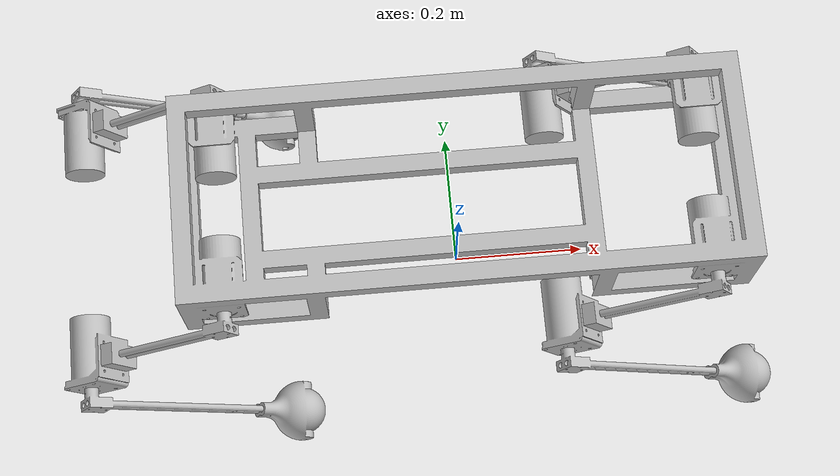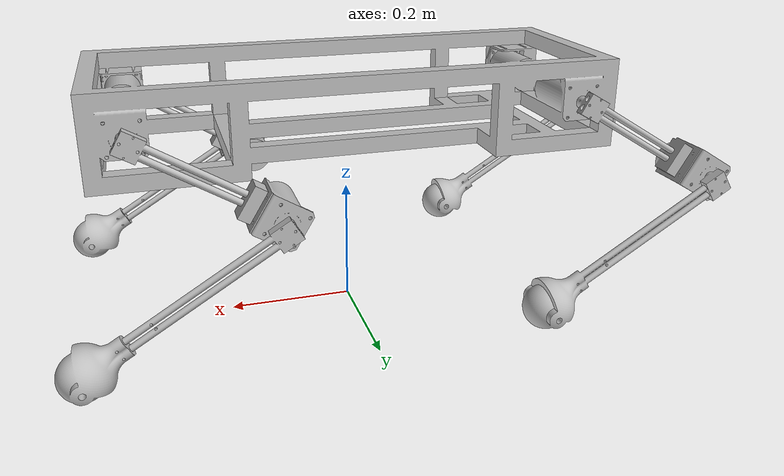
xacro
<?xml version="1.0"?>
<robot xmlns:xacro="http://www.ros.org/wiki/xacro" name="quadruped">
    <xacro:property name="PI" value="3.14159"/>
    <xacro:include filename="$(find rm_quadruped)/urdf/macros.xacro"/>
    <link name="base_footprint">
        <visual>
            <origin xyz="0.0 0.0 0.0" rpy="0.0 0.0 0.0"/>
            <geometry>
                <box size="0.001 0.001 0.001"/>
            </geometry>
            <material name="silver">
                <color rgba="${192/255} ${192/255} ${192/255} 1.0"/>
            </material>
        </visual>
    </link>
    <joint name="base_joint" type="fixed">
        <origin xyz="0.0 0.0 0.420" rpy="0.0 0.0 0.0"/>
        <parent link="base_footprint"/>
        <child link="base_link"/>
    </joint>
    <xacro:LINK
        linkname="base_link"
        x="0.0"
        y="0.0"
        z="0.0"
        roll="0"
        pitch="0"
        yaw="0"
        meshfile="package://rm_quadruped/meshes/frame.dae"
        mass="1.0"
        ixx="0.0"
        ixy="0.0"
        ixz="0.0"
        iyy="0.0"
        iyz="0.0"
        izz="0.0"
    />
    <xacro:GAZEBO_LINK
        link="base_link"
        gazebo_colour="Gazebo/Grey"
    />
    <xacro:JOINT_REVOLUTE
        joint_name="hip_RF"
        parent_link="base_link"
        child_link="thigh_RF"
        x="0.3421"
        y="-0.150"
        z="-0.0634"
        roll="${PI/2}"
        pitch="${PI/2}"
        yaw="0"
        ax="0"
        ay="0"
        az="1"
        Llimit="-0.5236"
        Ulimit="0.5236"
    />
    <xacro:TRANSMISSION
        joint_name="hip_RF"
    />
    <xacro:LINK
        linkname="thigh_RF"
        x="0.0"
        y="0.0"
        z="0.0"
        roll="0.0"
        pitch="0.0"
        yaw="0"
        meshfile="package://rm_quadruped/meshes/thigh_RF.dae"
        mass="0.2"
        ixx="0.0"
        ixy="0.0"
        ixz="0.0"
        iyy="0.0"
        iyz="0.0"
        izz="0.0"
    />
    <xacro:GAZEBO_LINK
        link="thigh_RF"
        gazebo_colour="Gazebo/Grey"
    />
    <xacro:JOINT_REVOLUTE
        joint_name="hip_RB"
        parent_link="base_link"
        child_link="thigh_RB"
        x="-0.3421"
        y="-0.150"
        z="-0.0634"
        roll="${PI/2}"
        pitch="${PI/2}"
        yaw="0"
        ax="0"
        ay="0"
        az="1"
        Llimit="-0.5236"
        Ulimit="0.5236"
    />
    <xacro:TRANSMISSION
        joint_name="hip_RB"
    />
    <xacro:LINK
        linkname="thigh_RB"
        x="0.0"
        y="0.0"
        z="0.0"
        roll="0.0"
        pitch="0.0"
        yaw="0"
        meshfile="package://rm_quadruped/meshes/thigh_RB.dae"
        mass="0.2"
        ixx="0.0"
        ixy="0.0"
        ixz="0.0"
        iyy="0.0"
        iyz="0.0"
        izz="0.0"
    />
    <xacro:GAZEBO_LINK
        link="thigh_RB"
        gazebo_colour="Gazebo/Grey"
    />
    <xacro:JOINT_REVOLUTE
        joint_name="knee_RF"
        parent_link="thigh_RF"
        child_link="crus_RF"
        x="0.1247"
        y="-0.2054"
        z="0.0628"
        roll="0"
        pitch="0"
        yaw="0"
        ax="0"
        ay="0"
        az="1"
        Llimit="-0.5236"
        Ulimit="0.5236"
    />
    <xacro:TRANSMISSION
        joint_name="knee_RF"
    />
    <xacro:LINK
        linkname="crus_RF"
        x="0.0"
        y="0.0"
        z="0.0"
        roll="0.0"
        pitch="0.0"
        yaw="0"
        meshfile="package://rm_quadruped/meshes/crus_RF.dae"
        mass="0.2"
        ixx="0.0"
        ixy="0.0"
        ixz="0.0"
        iyy="0.0"
        iyz="0.0"
        izz="0.0"
    />
    <xacro:GAZEBO_LINK
        link="crus_RF"
        gazebo_colour="Gazebo/Grey"
    />
    <xacro:JOINT_REVOLUTE
        joint_name="knee_RB"
        parent_link="thigh_RB"
        child_link="crus_RB"
        x="0.1247"
        y="-0.2054"
        z="0.0628"
        roll="0"
        pitch="0"
        yaw="0"
        ax="0"
        ay="0"
        az="1"
        Llimit="-0.5236"
        Ulimit="0.5236"
    />
    <xacro:TRANSMISSION
        joint_name="knee_RB"
    />
    <xacro:LINK
        linkname="crus_RB"
        x="0.0"
        y="0.0"
        z="0.0"
        roll="0.0"
        pitch="0.0"
        yaw="0"
        meshfile="package://rm_quadruped/meshes/crus_RB.dae"
        mass="0.2"
        ixx="0.0"
        ixy="0.0"
        ixz="0.0"
        iyy="0.0"
        iyz="0.0"
        izz="0.0"
    />
    <xacro:GAZEBO_LINK
        link="crus_RB"
        gazebo_colour="Gazebo/Grey"
    />
    <xacro:JOINT_REVOLUTE
        joint_name="hip_LF"
        parent_link="base_link"
        child_link="thigh_LF"
        x="0.3421"
        y="0.150"
        z="-0.0634"
        roll="${PI/2}"
        pitch="${PI/2}"
        yaw="0"
        ax="0"
        ay="0"
        az="1"
        Llimit="-0.5236"
        Ulimit="0.5236"
    />
    <xacro:TRANSMISSION
        joint_name="hip_LF"
    />
    <xacro:LINK
        linkname="thigh_LF"
        x="0.0"
        y="0.0"
        z="0.0"
        roll="0.0"
        pitch="0.0"
        yaw="0"
        meshfile="package://rm_quadruped/meshes/thigh_LF.dae"
        mass="0.2"
        ixx="0.0"
        ixy="0.0"
        ixz="0.0"
        iyy="0.0"
        iyz="0.0"
        izz="0.0"
    />
    <xacro:GAZEBO_LINK
        link="thigh_LF"
        gazebo_colour="Gazebo/Grey"
    />
    <xacro:JOINT_REVOLUTE
        joint_name="hip_LB"
        parent_link="base_link"
        child_link="thigh_LB"
        x="-0.3421"
        y="0.150"
        z="-0.0634"
        roll="${PI/2}"
        pitch="${PI/2}"
        yaw="0"
        ax="0"
        ay="0"
        az="1"
        Llimit="-0.5236"
        Ulimit="0.5236"
    />
    <xacro:TRANSMISSION
        joint_name="hip_LB"
    />
    <xacro:LINK
        linkname="thigh_LB"
        x="0.0"
        y="0.0"
        z="0.0"
        roll="0.0"
        pitch="0.0"
        yaw="0"
        meshfile="package://rm_quadruped/meshes/thigh_LB.dae"
        mass="0.2"
        ixx="0.0"
        ixy="0.0"
        ixz="0.0"
        iyy="0.0"
        iyz="0.0"
        izz="0.0"
    />
    <xacro:GAZEBO_LINK
        link="thigh_LB"
        gazebo_colour="Gazebo/Grey"
    />
    <xacro:JOINT_REVOLUTE
        joint_name="knee_LF"
        parent_link="thigh_LF"
        child_link="crus_LF"
        x="0.1247"
        y="-0.2054"
        z="-0.0628"
        roll="0"
        pitch="0"
        yaw="0"
        ax="0"
        ay="0"
        az="1"
        Llimit="-0.5236"
        Ulimit="0.5236"
    />
    <xacro:TRANSMISSION
        joint_name="knee_LF"
    />
    <xacro:LINK
        linkname="crus_LF"
        x="0.0"
        y="0.0"
        z="0.0"
        roll="0.0"
        pitch="0.0"
        yaw="0"
        meshfile="package://rm_quadruped/meshes/crus_LF.dae"
        mass="0.2"
        ixx="0.0"
        ixy="0.0"
        ixz="0.0"
        iyy="0.0"
        iyz="0.0"
        izz="0.0"
    />
    <xacro:GAZEBO_LINK
        link="crus_LF"
        gazebo_colour="Gazebo/Grey"
    />
    <xacro:JOINT_REVOLUTE
        joint_name="knee_LB"
        parent_link="thigh_LB"
        child_link="crus_LB"
        x="0.1247"
        y="-0.2054"
        z="-0.0628"
        roll="0"
        pitch="0"
        yaw="0"
        ax="0"
        ay="0"
        az="1"
        Llimit="-0.5236"
        Ulimit="0.5236"
    />
    <xacro:TRANSMISSION
        joint_name="knee_LB"
    />
    <xacro:LINK
        linkname="crus_LB"
        x="0.0"
        y="0.0"
        z="0.0"
        roll="0.0"
        pitch="0.0"
        yaw="0"
        meshfile="package://rm_quadruped/meshes/crus_LB.dae"
        mass="0.2"
        ixx="0.0"
        ixy="0.0"
        ixz="0.0"
        iyy="0.0"
        iyz="0.0"
        izz="0.0"
    />
    <xacro:GAZEBO_LINK
        link="crus_LB"
        gazebo_colour="Gazebo/Grey"
    />

</robot>

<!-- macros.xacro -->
<robot xmlns:xacro="http://www.ros.org/wiki/xacro">
    <xacro:macro name="LINK" params="linkname x y z roll pitch yaw meshfile mass ixx ixy ixz iyy iyz izz">
        <link name="${linkname}">
            <inertial>
                <origin xyz="${x} ${y} ${z}" rpy="${roll} ${pitch} ${yaw}"/>
                <mass value="${mass}"/>
                <inertia ixx="${ixx}" ixy="${ixy}" ixz="${ixz}" iyy="${iyy}" iyz="${iyz}" izz="${izz}"/>
            </inertial>
            <visual>
                <origin xyz="${x} ${y} ${z}" rpy="${roll} ${pitch} ${yaw}"/>
                <geometry>
                    <mesh filename="${meshfile}" scale="0.001 0.001 0.001"/>
                </geometry>
                <material name="silver">
                    <color rgba="${192/255} ${192/255} ${192/255} 1.0"/>
                </material>
            </visual>
            <collision>
                <origin xyz="${x} ${y} ${z}" rpy="${roll} ${pitch} ${yaw}"/>
                <geometry>
                    <mesh filename="${meshfile}" scale="0.001 0.001 0.001"/>
                </geometry>
            </collision>
        </link>
    </xacro:macro>
    <xacro:macro name="JOINT_REVOLUTE" params="joint_name parent_link child_link x y z roll pitch yaw ax ay az Llimit Ulimit">
        <joint name="${joint_name}" type="revolute">
            <origin xyz="${x} ${y} ${z}" rpy="${roll} ${pitch} ${yaw}"/>
            <parent link="${parent_link}"/>
            <child link="${child_link}"/>
            <axis xyz="${ax} ${ay} ${az}"/>
            <dynamics damping="0.0" friction="0.0"/>
            <limit lower="${Llimit}" upper="${Ulimit}" effort="30" velocity="6.1785"/>
        </joint>
    </xacro:macro>
    <xacro:macro name="GAZEBO_LINK" params="gazebo_colour link">
        <gazebo reference="${link}">
            <material>${gazebo_colour}</material>
            <gravity>true</gravity>
            <selfCollide>true</selfCollide>
            <kp>1000000.0</kp>
            <kd>1.0</kd>
            <mu1>0.8</mu1>
            <mu2>0.8</mu2>
            <maxVel>0.0</maxVel>
            <minDepth>0.001</minDepth>
        </gazebo>
    </xacro:macro>
    <xacro:macro name="TRANSMISSION" params="joint_name">
        <transmission name="${joint_name}_trans">
            <type>transmission_interface/SimpleTransmission</type>
            <joint name="${joint_name}">
                <hardwareInterface>hardware_interface/EffortJointInterface</hardwareInterface>
            </joint>
            <actuator name="${joint_name}_motor">
                <mechanicalReduction>300</mechanicalReduction>
            </actuator>
        </transmission>
    </xacro:macro>
</robot>
